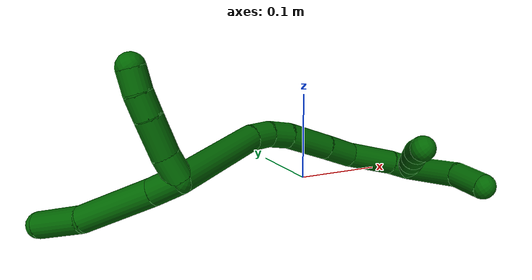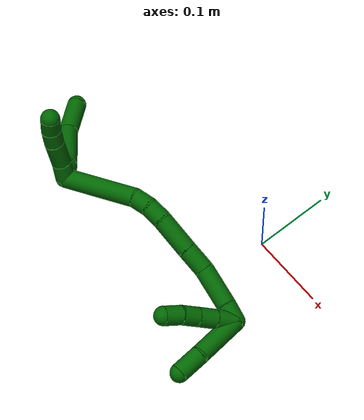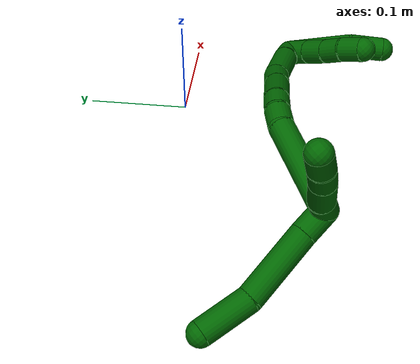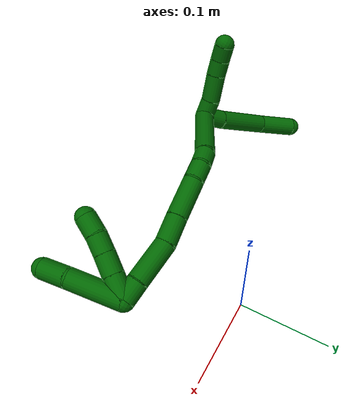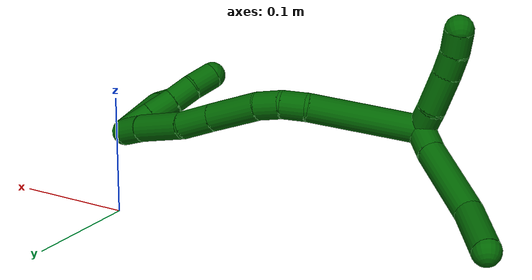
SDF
<sdf version="1.7">
 <world name="default">
  <model name="6">
   <static>0</static>
   <link name="6">
    <collision name="collision-cylinder-e_1_2_8">
     <pose>-0.000426 0.004192 0.013317 -0.30493 -0.030513 0.004689</pose>
     <geometry><cylinder><radius>0.0125</radius><length>0.027936</length></cylinder></geometry>
     <surface>
      <friction><ode><mu>1.16</mu><mu2>1.16</mu2><slip1>0</slip1><slip2>0</slip2></ode></friction>
      <contact><ode><kp>1e+06</kp><kd>1</kd><max_vel>0</max_vel><min_depth>0.001</min_depth></ode></contact>
     </surface>
    </collision>
    <visual name="visual-cylinder-e_1_2_8">
     <pose>-0.000426 0.004192 0.013317 -0.30493 -0.030513 0.004689</pose>
     <geometry><cylinder><radius>0.0125</radius><length>0.027936</length></cylinder></geometry>
     <material><ambient>0 0.392157 0.003922 1</ambient></material>
    </visual>
    <collision name="collision-cylinder-e_2_8_9">
     <pose>-0.001738 0.022609 0.059687 -0.40643 -0.024605 0.00507</pose>
     <geometry><cylinder><radius>0.0125</radius><length>0.071989</length></cylinder></geometry>
     <surface>
      <friction><ode><mu>1.16</mu><mu2>1.16</mu2><slip1>0</slip1><slip2>0</slip2></ode></friction>
      <contact><ode><kp>1e+06</kp><kd>1</kd><max_vel>0</max_vel><min_depth>0.001</min_depth></ode></contact>
     </surface>
    </collision>
    <visual name="visual-cylinder-e_2_8_9">
     <pose>-0.001738 0.022609 0.059687 -0.40643 -0.024605 0.00507</pose>
     <geometry><cylinder><radius>0.0125</radius><length>0.071989</length></cylinder></geometry>
     <material><ambient>0 0.392157 0.003922 1</ambient></material>
    </visual>
    <collision name="collision-cylinder-e_3_9_6">
     <pose>-0.009552 0.044612 0.115507 -0.329184 -0.280386 0.04687</pose>
     <geometry><cylinder><radius>0.0125</radius><length>0.050075</length></cylinder></geometry>
     <surface>
      <friction><ode><mu>1.16</mu><mu2>1.16</mu2><slip1>0</slip1><slip2>0</slip2></ode></friction>
      <contact><ode><kp>1e+06</kp><kd>1</kd><max_vel>0</max_vel><min_depth>0.001</min_depth></ode></contact>
     </surface>
    </collision>
    <visual name="visual-cylinder-e_3_9_6">
     <pose>-0.009552 0.044612 0.115507 -0.329184 -0.280386 0.04687</pose>
     <geometry><cylinder><radius>0.0125</radius><length>0.050075</length></cylinder></geometry>
     <material><ambient>0 0.392157 0.003922 1</ambient></material>
    </visual>
    <collision name="collision-cylinder-e_1_2_10">
     <pose>-0.008049 0.008292 -0.003184 -1.93738 -0.736199 1.02281</pose>
     <geometry><cylinder><radius>0.0125</radius><length>0.023974</length></cylinder></geometry>
     <surface>
      <friction><ode><mu>1.16</mu><mu2>1.16</mu2><slip1>0</slip1><slip2>0</slip2></ode></friction>
      <contact><ode><kp>1e+06</kp><kd>1</kd><max_vel>0</max_vel><min_depth>0.001</min_depth></ode></contact>
     </surface>
    </collision>
    <visual name="visual-cylinder-e_1_2_10">
     <pose>-0.008049 0.008292 -0.003184 -1.93738 -0.736199 1.02281</pose>
     <geometry><cylinder><radius>0.0125</radius><length>0.023974</length></cylinder></geometry>
     <material><ambient>0 0.392157 0.003922 1</ambient></material>
    </visual>
    <collision name="collision-cylinder-e_2_10_11">
     <pose>-0.026772 0.028177 -0.013707 -2.13524 -0.661195 1.11503</pose>
     <geometry><cylinder><radius>0.0125</radius><length>0.034768</length></cylinder></geometry>
     <surface>
      <friction><ode><mu>1.16</mu><mu2>1.16</mu2><slip1>0</slip1><slip2>0</slip2></ode></friction>
      <contact><ode><kp>1e+06</kp><kd>1</kd><max_vel>0</max_vel><min_depth>0.001</min_depth></ode></contact>
     </surface>
    </collision>
    <visual name="visual-cylinder-e_2_10_11">
     <pose>-0.026772 0.028177 -0.013707 -2.13524 -0.661195 1.11503</pose>
     <geometry><cylinder><radius>0.0125</radius><length>0.034768</length></cylinder></geometry>
     <material><ambient>0 0.392157 0.003922 1</ambient></material>
    </visual>
    <collision name="collision-cylinder-e_3_11_12">
     <pose>-0.044464 0.046313 -0.025093 -2.12456 -0.739431 1.21505</pose>
     <geometry><cylinder><radius>0.0125</radius><length>0.020826</length></cylinder></geometry>
     <surface>
      <friction><ode><mu>1.16</mu><mu2>1.16</mu2><slip1>0</slip1><slip2>0</slip2></ode></friction>
      <contact><ode><kp>1e+06</kp><kd>1</kd><max_vel>0</max_vel><min_depth>0.001</min_depth></ode></contact>
     </surface>
    </collision>
    <visual name="visual-cylinder-e_3_11_12">
     <pose>-0.044464 0.046313 -0.025093 -2.12456 -0.739431 1.21505</pose>
     <geometry><cylinder><radius>0.0125</radius><length>0.020826</length></cylinder></geometry>
     <material><ambient>0 0.392157 0.003922 1</ambient></material>
    </visual>
    <collision name="collision-cylinder-e_4_12_5">
     <pose>-0.059226 0.05802 -0.033349 -2.25487 -0.860345 1.53639</pose>
     <geometry><cylinder><radius>0.0125</radius><length>0.020433</length></cylinder></geometry>
     <surface>
      <friction><ode><mu>1.16</mu><mu2>1.16</mu2><slip1>0</slip1><slip2>0</slip2></ode></friction>
      <contact><ode><kp>1e+06</kp><kd>1</kd><max_vel>0</max_vel><min_depth>0.001</min_depth></ode></contact>
     </surface>
    </collision>
    <visual name="visual-cylinder-e_4_12_5">
     <pose>-0.059226 0.05802 -0.033349 -2.25487 -0.860345 1.53639</pose>
     <geometry><cylinder><radius>0.0125</radius><length>0.020433</length></cylinder></geometry>
     <material><ambient>0 0.392157 0.003922 1</ambient></material>
    </visual>
    <collision name="collision-cylinder-e_1_2_13">
     <pose>-0.027157 -0.040161 -0.007478 1.75488 -0.586685 -0.69728</pose>
     <geometry><cylinder><radius>0.0125</radius><length>0.098109</length></cylinder></geometry>
     <surface>
      <friction><ode><mu>1.16</mu><mu2>1.16</mu2><slip1>0</slip1><slip2>0</slip2></ode></friction>
      <contact><ode><kp>1e+06</kp><kd>1</kd><max_vel>0</max_vel><min_depth>0.001</min_depth></ode></contact>
     </surface>
    </collision>
    <visual name="visual-cylinder-e_1_2_13">
     <pose>-0.027157 -0.040161 -0.007478 1.75488 -0.586685 -0.69728</pose>
     <geometry><cylinder><radius>0.0125</radius><length>0.098109</length></cylinder></geometry>
     <material><ambient>0 0.392157 0.003922 1</ambient></material>
    </visual>
    <collision name="collision-cylinder-e_2_13_14">
     <pose>-0.057698 -0.090508 -0.017601 1.82495 -0.311213 -0.400236</pose>
     <geometry><cylinder><radius>0.0125</radius><length>0.022109</length></cylinder></geometry>
     <surface>
      <friction><ode><mu>1.16</mu><mu2>1.16</mu2><slip1>0</slip1><slip2>0</slip2></ode></friction>
      <contact><ode><kp>1e+06</kp><kd>1</kd><max_vel>0</max_vel><min_depth>0.001</min_depth></ode></contact>
     </surface>
    </collision>
    <visual name="visual-cylinder-e_2_13_14">
     <pose>-0.057698 -0.090508 -0.017601 1.82495 -0.311213 -0.400236</pose>
     <geometry><cylinder><radius>0.0125</radius><length>0.022109</length></cylinder></geometry>
     <material><ambient>0 0.392157 0.003922 1</ambient></material>
    </visual>
    <collision name="collision-cylinder-e_3_14_15">
     <pose>-0.061855 -0.112085 -0.022607 1.7751 -0.066274 -0.081399</pose>
     <geometry><cylinder><radius>0.0125</radius><length>0.02332</length></cylinder></geometry>
     <surface>
      <friction><ode><mu>1.16</mu><mu2>1.16</mu2><slip1>0</slip1><slip2>0</slip2></ode></friction>
      <contact><ode><kp>1e+06</kp><kd>1</kd><max_vel>0</max_vel><min_depth>0.001</min_depth></ode></contact>
     </surface>
    </collision>
    <visual name="visual-cylinder-e_3_14_15">
     <pose>-0.061855 -0.112085 -0.022607 1.7751 -0.066274 -0.081399</pose>
     <geometry><cylinder><radius>0.0125</radius><length>0.02332</length></cylinder></geometry>
     <material><ambient>0 0.392157 0.003922 1</ambient></material>
    </visual>
    <collision name="collision-cylinder-e_4_15_16">
     <pose>-0.060538 -0.14725 -0.027821 1.69026 0.087062 0.09812</pose>
     <geometry><cylinder><radius>0.0125</radius><length>0.048069</length></cylinder></geometry>
     <surface>
      <friction><ode><mu>1.16</mu><mu2>1.16</mu2><slip1>0</slip1><slip2>0</slip2></ode></friction>
      <contact><ode><kp>1e+06</kp><kd>1</kd><max_vel>0</max_vel><min_depth>0.001</min_depth></ode></contact>
     </surface>
    </collision>
    <visual name="visual-cylinder-e_4_15_16">
     <pose>-0.060538 -0.14725 -0.027821 1.69026 0.087062 0.09812</pose>
     <geometry><cylinder><radius>0.0125</radius><length>0.048069</length></cylinder></geometry>
     <material><ambient>0 0.392157 0.003922 1</ambient></material>
    </visual>
    <collision name="collision-cylinder-e_5_16_17">
     <pose>-0.057123 -0.187382 -0.032226 1.66531 0.080426 0.088401</pose>
     <geometry><cylinder><radius>0.0125</radius><length>0.032972</length></cylinder></geometry>
     <surface>
      <friction><ode><mu>1.16</mu><mu2>1.16</mu2><slip1>0</slip1><slip2>0</slip2></ode></friction>
      <contact><ode><kp>1e+06</kp><kd>1</kd><max_vel>0</max_vel><min_depth>0.001</min_depth></ode></contact>
     </surface>
    </collision>
    <visual name="visual-cylinder-e_5_16_17">
     <pose>-0.057123 -0.187382 -0.032226 1.66531 0.080426 0.088401</pose>
     <geometry><cylinder><radius>0.0125</radius><length>0.032972</length></cylinder></geometry>
     <material><ambient>0 0.392157 0.003922 1</ambient></material>
    </visual>
    <collision name="collision-cylinder-e_6_17_18">
     <pose>-0.052312 -0.227912 -0.041771 1.89021 0.136138 0.188152</pose>
     <geometry><cylinder><radius>0.0125</radius><length>0.051391</length></cylinder></geometry>
     <surface>
      <friction><ode><mu>1.16</mu><mu2>1.16</mu2><slip1>0</slip1><slip2>0</slip2></ode></friction>
      <contact><ode><kp>1e+06</kp><kd>1</kd><max_vel>0</max_vel><min_depth>0.001</min_depth></ode></contact>
     </surface>
    </collision>
    <visual name="visual-cylinder-e_6_17_18">
     <pose>-0.052312 -0.227912 -0.041771 1.89021 0.136138 0.188152</pose>
     <geometry><cylinder><radius>0.0125</radius><length>0.051391</length></cylinder></geometry>
     <material><ambient>0 0.392157 0.003922 1</ambient></material>
    </visual>
    <collision name="collision-cylinder-e_7_18_1">
     <pose>-0.046218 -0.263389 -0.052883 1.83992 0.218679 0.286337</pose>
     <geometry><cylinder><radius>0.0125</radius><length>0.024032</length></cylinder></geometry>
     <surface>
      <friction><ode><mu>1.16</mu><mu2>1.16</mu2><slip1>0</slip1><slip2>0</slip2></ode></friction>
      <contact><ode><kp>1e+06</kp><kd>1</kd><max_vel>0</max_vel><min_depth>0.001</min_depth></ode></contact>
     </surface>
    </collision>
    <visual name="visual-cylinder-e_7_18_1">
     <pose>-0.046218 -0.263389 -0.052883 1.83992 0.218679 0.286337</pose>
     <geometry><cylinder><radius>0.0125</radius><length>0.024032</length></cylinder></geometry>
     <material><ambient>0 0.392157 0.003922 1</ambient></material>
    </visual>
    <collision name="collision-cylinder-e_1_1_19">
     <pose>-0.024005 -0.270879 -0.082068 -2.99619 0.639807 -2.70879</pose>
     <geometry><cylinder><radius>0.0125</radius><length>0.065678</length></cylinder></geometry>
     <surface>
      <friction><ode><mu>1.16</mu><mu2>1.16</mu2><slip1>0</slip1><slip2>0</slip2></ode></friction>
      <contact><ode><kp>1e+06</kp><kd>1</kd><max_vel>0</max_vel><min_depth>0.001</min_depth></ode></contact>
     </surface>
    </collision>
    <visual name="visual-cylinder-e_1_1_19">
     <pose>-0.024005 -0.270879 -0.082068 -2.99619 0.639807 -2.70879</pose>
     <geometry><cylinder><radius>0.0125</radius><length>0.065678</length></cylinder></geometry>
     <material><ambient>0 0.392157 0.003922 1</ambient></material>
    </visual>
    <collision name="collision-cylinder-e_2_19_4">
     <pose>0.008636 -0.265018 -0.119107 -2.9574 0.86262 -2.74548</pose>
     <geometry><cylinder><radius>0.0125</radius><length>0.034322</length></cylinder></geometry>
     <surface>
      <friction><ode><mu>1.16</mu><mu2>1.16</mu2><slip1>0</slip1><slip2>0</slip2></ode></friction>
      <contact><ode><kp>1e+06</kp><kd>1</kd><max_vel>0</max_vel><min_depth>0.001</min_depth></ode></contact>
     </surface>
    </collision>
    <visual name="visual-cylinder-e_2_19_4">
     <pose>0.008636 -0.265018 -0.119107 -2.9574 0.86262 -2.74548</pose>
     <geometry><cylinder><radius>0.0125</radius><length>0.034322</length></cylinder></geometry>
     <material><ambient>0 0.392157 0.003922 1</ambient></material>
    </visual>
    <collision name="collision-cylinder-e_1_1_20">
     <pose>-0.039674 -0.263853 -0.064201 -2.21821 0.28192 -0.555636</pose>
     <geometry><cylinder><radius>0.0125</radius><length>0.028306</length></cylinder></geometry>
     <surface>
      <friction><ode><mu>1.16</mu><mu2>1.16</mu2><slip1>0</slip1><slip2>0</slip2></ode></friction>
      <contact><ode><kp>1e+06</kp><kd>1</kd><max_vel>0</max_vel><min_depth>0.001</min_depth></ode></contact>
     </surface>
    </collision>
    <visual name="visual-cylinder-e_1_1_20">
     <pose>-0.039674 -0.263853 -0.064201 -2.21821 0.28192 -0.555636</pose>
     <geometry><cylinder><radius>0.0125</radius><length>0.028306</length></cylinder></geometry>
     <material><ambient>0 0.392157 0.003922 1</ambient></material>
    </visual>
    <collision name="collision-cylinder-e_2_20_21">
     <pose>-0.032273 -0.243357 -0.079616 -2.21273 0.279807 -0.548053</pose>
     <geometry><cylinder><radius>0.0125</radius><length>0.025078</length></cylinder></geometry>
     <surface>
      <friction><ode><mu>1.16</mu><mu2>1.16</mu2><slip1>0</slip1><slip2>0</slip2></ode></friction>
      <contact><ode><kp>1e+06</kp><kd>1</kd><max_vel>0</max_vel><min_depth>0.001</min_depth></ode></contact>
     </surface>
    </collision>
    <visual name="visual-cylinder-e_2_20_21">
     <pose>-0.032273 -0.243357 -0.079616 -2.21273 0.279807 -0.548053</pose>
     <geometry><cylinder><radius>0.0125</radius><length>0.025078</length></cylinder></geometry>
     <material><ambient>0 0.392157 0.003922 1</ambient></material>
    </visual>
    <collision name="collision-cylinder-e_3_21_22">
     <pose>-0.026053 -0.225209 -0.093836 -2.2603 0.245384 -0.511526</pose>
     <geometry><cylinder><radius>0.0125</radius><length>0.022702</length></cylinder></geometry>
     <surface>
      <friction><ode><mu>1.16</mu><mu2>1.16</mu2><slip1>0</slip1><slip2>0</slip2></ode></friction>
      <contact><ode><kp>1e+06</kp><kd>1</kd><max_vel>0</max_vel><min_depth>0.001</min_depth></ode></contact>
     </surface>
    </collision>
    <visual name="visual-cylinder-e_3_21_22">
     <pose>-0.026053 -0.225209 -0.093836 -2.2603 0.245384 -0.511526</pose>
     <geometry><cylinder><radius>0.0125</radius><length>0.022702</length></cylinder></geometry>
     <material><ambient>0 0.392157 0.003922 1</ambient></material>
    </visual>
    <collision name="collision-cylinder-e_4_22_3">
     <pose>-0.018585 -0.208641 -0.108298 -2.31663 0.40496 -0.877331</pose>
     <geometry><cylinder><radius>0.0125</radius><length>0.023915</length></cylinder></geometry>
     <surface>
      <friction><ode><mu>1.16</mu><mu2>1.16</mu2><slip1>0</slip1><slip2>0</slip2></ode></friction>
      <contact><ode><kp>1e+06</kp><kd>1</kd><max_vel>0</max_vel><min_depth>0.001</min_depth></ode></contact>
     </surface>
    </collision>
    <visual name="visual-cylinder-e_4_22_3">
     <pose>-0.018585 -0.208641 -0.108298 -2.31663 0.40496 -0.877331</pose>
     <geometry><cylinder><radius>0.0125</radius><length>0.023915</length></cylinder></geometry>
     <material><ambient>0 0.392157 0.003922 1</ambient></material>
    </visual>
    <collision name="collision-sphere-3">
     <pose>-0.013874 -0.200569 -0.115756 0 -0 0</pose>
     <geometry><sphere><radius>0.0125</radius></sphere></geometry>
     <surface>
      <friction><ode><mu>1.16</mu><mu2>1.16</mu2><slip1>0</slip1><slip2>0</slip2></ode></friction>
      <contact><ode><kp>1e+06</kp><kd>1</kd><max_vel>0</max_vel><min_depth>0.001</min_depth></ode></contact>
     </surface>
    </collision>
    <visual name="visual-sphere-3">
     <pose>-0.013874 -0.200569 -0.115756 0 -0 0</pose>
     <geometry><sphere><radius>0.0125</radius></sphere></geometry>
     <material><ambient>0 0.392157 0.003922 1</ambient></material>
    </visual>
    <collision name="collision-sphere-22">
     <pose>-0.023296 -0.216714 -0.100841 0 -0 0</pose>
     <geometry><sphere><radius>0.0125</radius></sphere></geometry>
     <surface>
      <friction><ode><mu>1.16</mu><mu2>1.16</mu2><slip1>0</slip1><slip2>0</slip2></ode></friction>
      <contact><ode><kp>1e+06</kp><kd>1</kd><max_vel>0</max_vel><min_depth>0.001</min_depth></ode></contact>
     </surface>
    </collision>
    <visual name="visual-sphere-22">
     <pose>-0.023296 -0.216714 -0.100841 0 -0 0</pose>
     <geometry><sphere><radius>0.0125</radius></sphere></geometry>
     <material><ambient>0 0.392157 0.003922 1</ambient></material>
    </visual>
    <collision name="collision-sphere-21">
     <pose>-0.02881 -0.233705 -0.086831 0 -0 0</pose>
     <geometry><sphere><radius>0.0125</radius></sphere></geometry>
     <surface>
      <friction><ode><mu>1.16</mu><mu2>1.16</mu2><slip1>0</slip1><slip2>0</slip2></ode></friction>
      <contact><ode><kp>1e+06</kp><kd>1</kd><max_vel>0</max_vel><min_depth>0.001</min_depth></ode></contact>
     </surface>
    </collision>
    <visual name="visual-sphere-21">
     <pose>-0.02881 -0.233705 -0.086831 0 -0 0</pose>
     <geometry><sphere><radius>0.0125</radius></sphere></geometry>
     <material><ambient>0 0.392157 0.003922 1</ambient></material>
    </visual>
    <collision name="collision-sphere-20">
     <pose>-0.035736 -0.25301 -0.0724 0 -0 0</pose>
     <geometry><sphere><radius>0.0125</radius></sphere></geometry>
     <surface>
      <friction><ode><mu>1.16</mu><mu2>1.16</mu2><slip1>0</slip1><slip2>0</slip2></ode></friction>
      <contact><ode><kp>1e+06</kp><kd>1</kd><max_vel>0</max_vel><min_depth>0.001</min_depth></ode></contact>
     </surface>
    </collision>
    <visual name="visual-sphere-20">
     <pose>-0.035736 -0.25301 -0.0724 0 -0 0</pose>
     <geometry><sphere><radius>0.0125</radius></sphere></geometry>
     <material><ambient>0 0.392157 0.003922 1</ambient></material>
    </visual>
    <collision name="collision-sphere-4">
     <pose>0.021671 -0.262973 -0.130081 0 -0 0</pose>
     <geometry><sphere><radius>0.0125</radius></sphere></geometry>
     <surface>
      <friction><ode><mu>1.16</mu><mu2>1.16</mu2><slip1>0</slip1><slip2>0</slip2></ode></friction>
      <contact><ode><kp>1e+06</kp><kd>1</kd><max_vel>0</max_vel><min_depth>0.001</min_depth></ode></contact>
     </surface>
    </collision>
    <visual name="visual-sphere-4">
     <pose>0.021671 -0.262973 -0.130081 0 -0 0</pose>
     <geometry><sphere><radius>0.0125</radius></sphere></geometry>
     <material><ambient>0 0.392157 0.003922 1</ambient></material>
    </visual>
    <collision name="collision-sphere-11">
     <pose>-0.037447 0.039769 -0.021047 0 -0 0</pose>
     <geometry><sphere><radius>0.0125</radius></sphere></geometry>
     <surface>
      <friction><ode><mu>1.16</mu><mu2>1.16</mu2><slip1>0</slip1><slip2>0</slip2></ode></friction>
      <contact><ode><kp>1e+06</kp><kd>1</kd><max_vel>0</max_vel><min_depth>0.001</min_depth></ode></contact>
     </surface>
    </collision>
    <visual name="visual-sphere-11">
     <pose>-0.037447 0.039769 -0.021047 0 -0 0</pose>
     <geometry><sphere><radius>0.0125</radius></sphere></geometry>
     <material><ambient>0 0.392157 0.003922 1</ambient></material>
    </visual>
    <collision name="collision-sphere-10">
     <pose>-0.016098 0.016585 -0.006368 0 -0 0</pose>
     <geometry><sphere><radius>0.0125</radius></sphere></geometry>
     <surface>
      <friction><ode><mu>1.16</mu><mu2>1.16</mu2><slip1>0</slip1><slip2>0</slip2></ode></friction>
      <contact><ode><kp>1e+06</kp><kd>1</kd><max_vel>0</max_vel><min_depth>0.001</min_depth></ode></contact>
     </surface>
    </collision>
    <visual name="visual-sphere-10">
     <pose>-0.016098 0.016585 -0.006368 0 -0 0</pose>
     <geometry><sphere><radius>0.0125</radius></sphere></geometry>
     <material><ambient>0 0.392157 0.003922 1</ambient></material>
    </visual>
    <collision name="collision-sphere-6">
     <pose>-0.016481 0.05239 0.138275 0 -0 0</pose>
     <geometry><sphere><radius>0.0125</radius></sphere></geometry>
     <surface>
      <friction><ode><mu>1.16</mu><mu2>1.16</mu2><slip1>0</slip1><slip2>0</slip2></ode></friction>
      <contact><ode><kp>1e+06</kp><kd>1</kd><max_vel>0</max_vel><min_depth>0.001</min_depth></ode></contact>
     </surface>
    </collision>
    <visual name="visual-sphere-6">
     <pose>-0.016481 0.05239 0.138275 0 -0 0</pose>
     <geometry><sphere><radius>0.0125</radius></sphere></geometry>
     <material><ambient>0 0.392157 0.003922 1</ambient></material>
    </visual>
    <collision name="collision-sphere-9">
     <pose>-0.002623 0.036834 0.092739 0 -0 0</pose>
     <geometry><sphere><radius>0.0125</radius></sphere></geometry>
     <surface>
      <friction><ode><mu>1.16</mu><mu2>1.16</mu2><slip1>0</slip1><slip2>0</slip2></ode></friction>
      <contact><ode><kp>1e+06</kp><kd>1</kd><max_vel>0</max_vel><min_depth>0.001</min_depth></ode></contact>
     </surface>
    </collision>
    <visual name="visual-sphere-9">
     <pose>-0.002623 0.036834 0.092739 0 -0 0</pose>
     <geometry><sphere><radius>0.0125</radius></sphere></geometry>
     <material><ambient>0 0.392157 0.003922 1</ambient></material>
    </visual>
    <collision name="collision-sphere-2">
     <geometry><sphere><radius>0.0125</radius></sphere></geometry>
     <surface>
      <friction><ode><mu>1.16</mu><mu2>1.16</mu2><slip1>0</slip1><slip2>0</slip2></ode></friction>
      <contact><ode><kp>1e+06</kp><kd>1</kd><max_vel>0</max_vel><min_depth>0.001</min_depth></ode></contact>
     </surface>
    </collision>
    <visual name="visual-sphere-2">
     <geometry><sphere><radius>0.0125</radius></sphere></geometry>
     <material><ambient>0 0.392157 0.003922 1</ambient></material>
    </visual>
    <collision name="collision-sphere-19">
     <pose>-0.004398 -0.267062 -0.108134 0 -0 0</pose>
     <geometry><sphere><radius>0.0125</radius></sphere></geometry>
     <surface>
      <friction><ode><mu>1.16</mu><mu2>1.16</mu2><slip1>0</slip1><slip2>0</slip2></ode></friction>
      <contact><ode><kp>1e+06</kp><kd>1</kd><max_vel>0</max_vel><min_depth>0.001</min_depth></ode></contact>
     </surface>
    </collision>
    <visual name="visual-sphere-19">
     <pose>-0.004398 -0.267062 -0.108134 0 -0 0</pose>
     <geometry><sphere><radius>0.0125</radius></sphere></geometry>
     <material><ambient>0 0.392157 0.003922 1</ambient></material>
    </visual>
    <collision name="collision-sphere-8">
     <pose>-0.000852 0.008383 0.026635 0 -0 0</pose>
     <geometry><sphere><radius>0.0125</radius></sphere></geometry>
     <surface>
      <friction><ode><mu>1.16</mu><mu2>1.16</mu2><slip1>0</slip1><slip2>0</slip2></ode></friction>
      <contact><ode><kp>1e+06</kp><kd>1</kd><max_vel>0</max_vel><min_depth>0.001</min_depth></ode></contact>
     </surface>
    </collision>
    <visual name="visual-sphere-8">
     <pose>-0.000852 0.008383 0.026635 0 -0 0</pose>
     <geometry><sphere><radius>0.0125</radius></sphere></geometry>
     <material><ambient>0 0.392157 0.003922 1</ambient></material>
    </visual>
    <collision name="collision-sphere-12">
     <pose>-0.051481 0.052857 -0.029139 0 -0 0</pose>
     <geometry><sphere><radius>0.0125</radius></sphere></geometry>
     <surface>
      <friction><ode><mu>1.16</mu><mu2>1.16</mu2><slip1>0</slip1><slip2>0</slip2></ode></friction>
      <contact><ode><kp>1e+06</kp><kd>1</kd><max_vel>0</max_vel><min_depth>0.001</min_depth></ode></contact>
     </surface>
    </collision>
    <visual name="visual-sphere-12">
     <pose>-0.051481 0.052857 -0.029139 0 -0 0</pose>
     <geometry><sphere><radius>0.0125</radius></sphere></geometry>
     <material><ambient>0 0.392157 0.003922 1</ambient></material>
    </visual>
    <collision name="collision-sphere-5">
     <pose>-0.066971 0.063184 -0.03756 0 -0 0</pose>
     <geometry><sphere><radius>0.0125</radius></sphere></geometry>
     <surface>
      <friction><ode><mu>1.16</mu><mu2>1.16</mu2><slip1>0</slip1><slip2>0</slip2></ode></friction>
      <contact><ode><kp>1e+06</kp><kd>1</kd><max_vel>0</max_vel><min_depth>0.001</min_depth></ode></contact>
     </surface>
    </collision>
    <visual name="visual-sphere-5">
     <pose>-0.066971 0.063184 -0.03756 0 -0 0</pose>
     <geometry><sphere><radius>0.0125</radius></sphere></geometry>
     <material><ambient>0 0.392157 0.003922 1</ambient></material>
    </visual>
    <collision name="collision-sphere-13">
     <pose>-0.054313 -0.080323 -0.014955 0 -0 0</pose>
     <geometry><sphere><radius>0.0125</radius></sphere></geometry>
     <surface>
      <friction><ode><mu>1.16</mu><mu2>1.16</mu2><slip1>0</slip1><slip2>0</slip2></ode></friction>
      <contact><ode><kp>1e+06</kp><kd>1</kd><max_vel>0</max_vel><min_depth>0.001</min_depth></ode></contact>
     </surface>
    </collision>
    <visual name="visual-sphere-13">
     <pose>-0.054313 -0.080323 -0.014955 0 -0 0</pose>
     <geometry><sphere><radius>0.0125</radius></sphere></geometry>
     <material><ambient>0 0.392157 0.003922 1</ambient></material>
    </visual>
    <collision name="collision-sphere-14">
     <pose>-0.061083 -0.100693 -0.020247 0 -0 0</pose>
     <geometry><sphere><radius>0.0125</radius></sphere></geometry>
     <surface>
      <friction><ode><mu>1.16</mu><mu2>1.16</mu2><slip1>0</slip1><slip2>0</slip2></ode></friction>
      <contact><ode><kp>1e+06</kp><kd>1</kd><max_vel>0</max_vel><min_depth>0.001</min_depth></ode></contact>
     </surface>
    </collision>
    <visual name="visual-sphere-14">
     <pose>-0.061083 -0.100693 -0.020247 0 -0 0</pose>
     <geometry><sphere><radius>0.0125</radius></sphere></geometry>
     <material><ambient>0 0.392157 0.003922 1</ambient></material>
    </visual>
    <collision name="collision-sphere-15">
     <pose>-0.062628 -0.123477 -0.024968 0 -0 0</pose>
     <geometry><sphere><radius>0.0125</radius></sphere></geometry>
     <surface>
      <friction><ode><mu>1.16</mu><mu2>1.16</mu2><slip1>0</slip1><slip2>0</slip2></ode></friction>
      <contact><ode><kp>1e+06</kp><kd>1</kd><max_vel>0</max_vel><min_depth>0.001</min_depth></ode></contact>
     </surface>
    </collision>
    <visual name="visual-sphere-15">
     <pose>-0.062628 -0.123477 -0.024968 0 -0 0</pose>
     <geometry><sphere><radius>0.0125</radius></sphere></geometry>
     <material><ambient>0 0.392157 0.003922 1</ambient></material>
    </visual>
    <collision name="collision-sphere-16">
     <pose>-0.058448 -0.171023 -0.030675 0 -0 0</pose>
     <geometry><sphere><radius>0.0125</radius></sphere></geometry>
     <surface>
      <friction><ode><mu>1.16</mu><mu2>1.16</mu2><slip1>0</slip1><slip2>0</slip2></ode></friction>
      <contact><ode><kp>1e+06</kp><kd>1</kd><max_vel>0</max_vel><min_depth>0.001</min_depth></ode></contact>
     </surface>
    </collision>
    <visual name="visual-sphere-16">
     <pose>-0.058448 -0.171023 -0.030675 0 -0 0</pose>
     <geometry><sphere><radius>0.0125</radius></sphere></geometry>
     <material><ambient>0 0.392157 0.003922 1</ambient></material>
    </visual>
    <collision name="collision-sphere-17">
     <pose>-0.055799 -0.203742 -0.033777 0 -0 0</pose>
     <geometry><sphere><radius>0.0125</radius></sphere></geometry>
     <surface>
      <friction><ode><mu>1.16</mu><mu2>1.16</mu2><slip1>0</slip1><slip2>0</slip2></ode></friction>
      <contact><ode><kp>1e+06</kp><kd>1</kd><max_vel>0</max_vel><min_depth>0.001</min_depth></ode></contact>
     </surface>
    </collision>
    <visual name="visual-sphere-17">
     <pose>-0.055799 -0.203742 -0.033777 0 -0 0</pose>
     <geometry><sphere><radius>0.0125</radius></sphere></geometry>
     <material><ambient>0 0.392157 0.003922 1</ambient></material>
    </visual>
    <collision name="collision-sphere-18">
     <pose>-0.048824 -0.252082 -0.049765 0 -0 0</pose>
     <geometry><sphere><radius>0.0125</radius></sphere></geometry>
     <surface>
      <friction><ode><mu>1.16</mu><mu2>1.16</mu2><slip1>0</slip1><slip2>0</slip2></ode></friction>
      <contact><ode><kp>1e+06</kp><kd>1</kd><max_vel>0</max_vel><min_depth>0.001</min_depth></ode></contact>
     </surface>
    </collision>
    <visual name="visual-sphere-18">
     <pose>-0.048824 -0.252082 -0.049765 0 -0 0</pose>
     <geometry><sphere><radius>0.0125</radius></sphere></geometry>
     <material><ambient>0 0.392157 0.003922 1</ambient></material>
    </visual>
    <collision name="collision-sphere-1">
     <pose>-0.043611 -0.274696 -0.056002 0 -0 0</pose>
     <geometry><sphere><radius>0.0125</radius></sphere></geometry>
     <surface>
      <friction><ode><mu>1.16</mu><mu2>1.16</mu2><slip1>0</slip1><slip2>0</slip2></ode></friction>
      <contact><ode><kp>1e+06</kp><kd>1</kd><max_vel>0</max_vel><min_depth>0.001</min_depth></ode></contact>
     </surface>
    </collision>
    <visual name="visual-sphere-1">
     <pose>-0.043611 -0.274696 -0.056002 0 -0 0</pose>
     <geometry><sphere><radius>0.0125</radius></sphere></geometry>
     <material><ambient>0 0.392157 0.003922 1</ambient></material>
    </visual>
    <inertial>
     <pose>-0.029465 -0.110809 -0.022378 0 -0 0</pose>
     <mass>0.75</mass>
     <inertia><ixx>7.3e-05</ixx><ixy>0</ixy><ixz>0</ixz><iyy>3.2e-05</iyy><iyz>0</iyz><izz>9.1e-05</izz></inertia>
    </inertial>
   </link>
   <pose>-0.204812 -0.155026 0.065335 2.60062 0.7738 -1.74066</pose>
  </model>
 </world>
</sdf>
